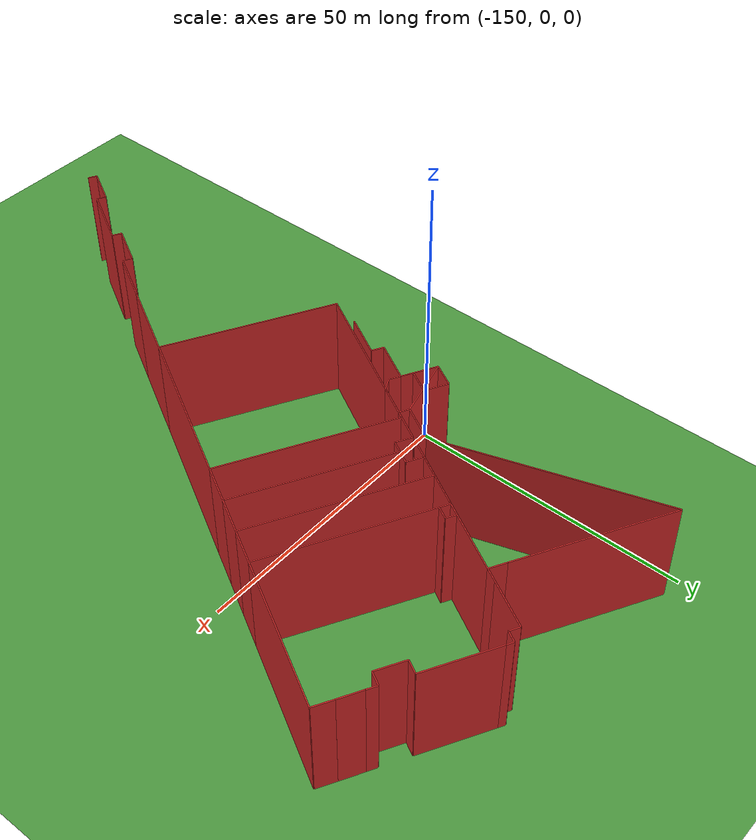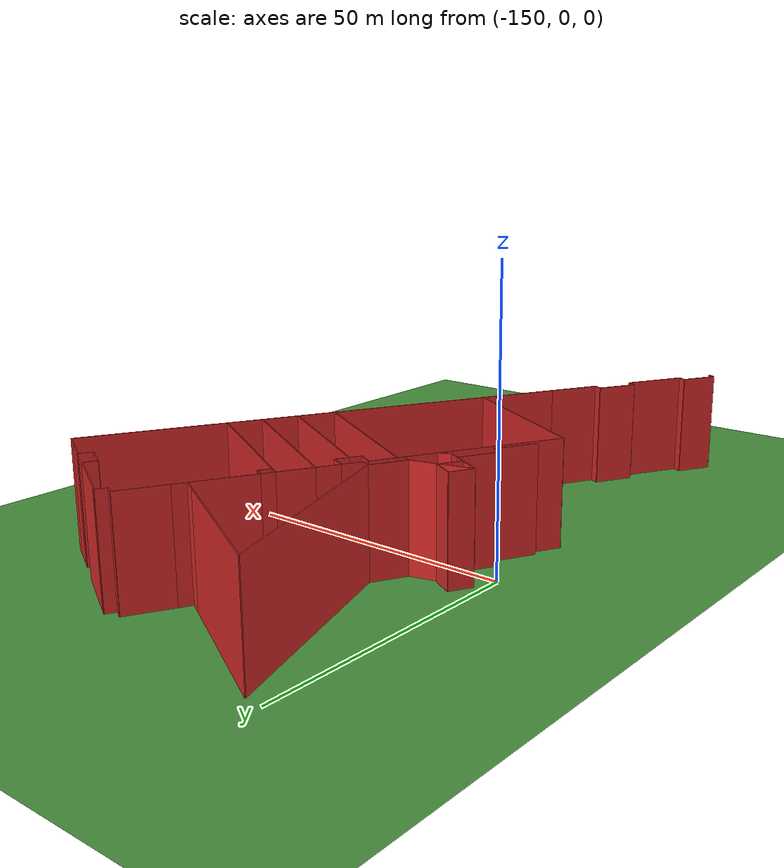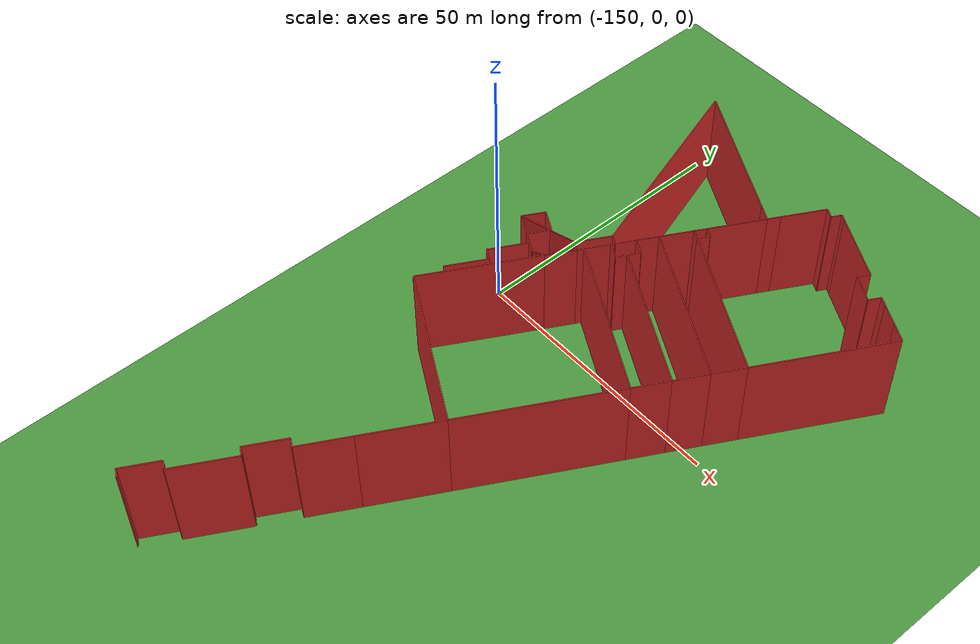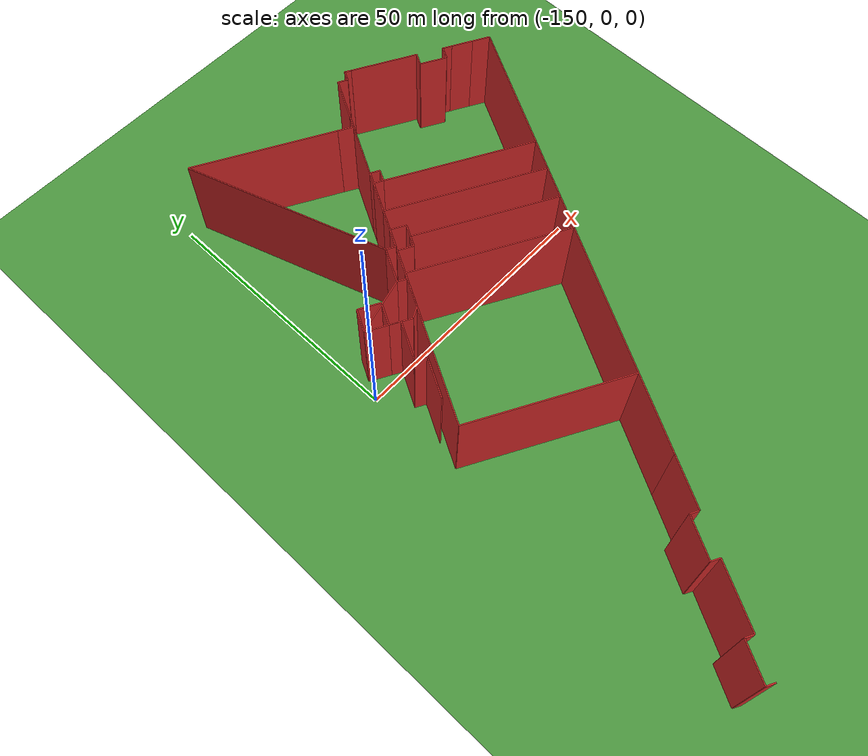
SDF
<sdf version="1.4">
 <world name="default">
  <model name="ground">
   <static>true</static>
   <link name="link">
    <collision name="collision">
     <geometry><plane><size>10000 10000</size><normal>0 0 1</normal></plane></geometry>
     <surface><friction><ode><mu>100</mu><mu2>50</mu2></ode></friction></surface>
    </collision>
    <visual name="visual">
     <pose>0 0 -1 0 0 0</pose>
     <geometry><plane><normal>0 0 1</normal><size>10000 10000</size></plane></geometry>
     <material>
      <script><uri>file://media/materials/scripts/gazebo.material</uri><name>Gazebo/Grass</name></script>
     </material>
    </visual>
   </link>
  </model>
  <include><uri>model://sun</uri></include>
  <model name="office_building_266170673">
   <static>true</static>
   <pose>-133.467087695 -51.8419113068 0.0 0 0 0</pose>
   <link name="office_building_266170673_0">
    <collision name="office_building_266170673_0">
     <geometry><box><size>9.57046490442 0.2 20.0</size></box></geometry>
    </collision>
    <visual name="office_building_266170673_0">
     <geometry><box><size>9.57046490442 0.2 20.0</size></box></geometry>
     <material>
      <script><uri>file://media/materials/scripts/gazebo.material</uri><name>Gazebo/Red</name></script>
     </material>
    </visual>
    <pose>1.27317436344 1.12023192378 9.0 0 0 1.06501905872</pose>
   </link>
   <link name="office_building_266170673_1">
    <collision name="office_building_266170673_1">
     <geometry><box><size>1.71310447526 0.2 20.0</size></box></geometry>
    </collision>
    <visual name="office_building_266170673_1">
     <geometry><box><size>1.71310447526 0.2 20.0</size></box></geometry>
     <material>
      <script><uri>file://media/materials/scripts/gazebo.material</uri><name>Gazebo/Red</name></script>
     </material>
    </visual>
    <pose>-1.79577992957 -2.65317223891 9.0 0 0 -0.502736365974</pose>
   </link>
  </model>
  <model name="office_building_266170671">
   <static>true</static>
   <pose>-147.989314854 -13.872265409 0.0 0 0 0</pose>
  </model>
  <model name="office_building_266170678">
   <static>true</static>
   <pose>-146.095301388 -8.93091840844 0.0 0 0 0</pose>
   <link name="office_building_266170678_0">
    <collision name="office_building_266170678_0">
     <geometry><box><size>2.19699793983 0.2 20.0</size></box></geometry>
    </collision>
    <visual name="office_building_266170678_0">
     <geometry><box><size>2.19699793983 0.2 20.0</size></box></geometry>
     <material>
      <script><uri>file://media/materials/scripts/gazebo.material</uri><name>Gazebo/Red</name></script>
     </material>
    </visual>
    <pose>0.947006733361 2.47067350026 9.0 0 0 2.63745570477</pose>
   </link>
   <link name="office_building_266170678_1">
    <collision name="office_building_266170678_1">
     <geometry><box><size>7.8622659953 0.2 20.0</size></box></geometry>
    </collision>
    <visual name="office_building_266170678_1">
     <geometry><box><size>7.8622659953 0.2 20.0</size></box></geometry>
     <material>
      <script><uri>file://media/materials/scripts/gazebo.material</uri><name>Gazebo/Red</name></script>
     </material>
    </visual>
    <pose>0.00741492303723 -1.50065277931 9.0 0 0 1.06593671188</pose>
   </link>
  </model>
  <model name="office_building_266170679">
   <static>true</static>
   <pose>-134.067640427 -33.0929005732 0.0 0 0 0</pose>
   <link name="office_building_266170679_0">
    <collision name="office_building_266170679_0">
     <geometry><box><size>30.5387298303 0.2 20.0</size></box></geometry>
    </collision>
    <visual name="office_building_266170679_0">
     <geometry><box><size>30.5387298303 0.2 20.0</size></box></geometry>
     <material>
      <script><uri>file://media/materials/scripts/gazebo.material</uri><name>Gazebo/Red</name></script>
     </material>
    </visual>
    <pose>-2.09605629576 6.72133312792 9.0 0 0 2.63916750768</pose>
   </link>
   <link name="office_building_266170679_1">
    <collision name="office_building_266170679_1">
     <geometry><box><size>14.644074832 0.2 20.0</size></box></geometry>
    </collision>
    <visual name="office_building_266170679_1">
     <geometry><box><size>14.644074832 0.2 20.0</size></box></geometry>
     <material>
      <script><uri>file://media/materials/scripts/gazebo.material</uri><name>Gazebo/Red</name></script>
     </material>
    </visual>
    <pose>7.73919597546 -7.03716616698 9.0 0 0 1.06507409138</pose>
   </link>
  </model>
  <model name="office_building_266170731">
   <static>true</static>
   <pose>-108.124013535 33.1073011275 0.0 0 0 0</pose>
   <link name="office_building_266170731_0">
    <collision name="office_building_266170731_0">
     <geometry><box><size>2.25210578197 0.2 20.0</size></box></geometry>
    </collision>
    <visual name="office_building_266170731_0">
     <geometry><box><size>2.25210578197 0.2 20.0</size></box></geometry>
     <material>
      <script><uri>file://media/materials/scripts/gazebo.material</uri><name>Gazebo/Red</name></script>
     </material>
    </visual>
    <pose>-15.7582168205 -9.60791184516 9.0 0 0 -2.07586279892</pose>
   </link>
   <link name="office_building_266170731_1">
    <collision name="office_building_266170731_1">
     <geometry><box><size>1.8527502463 0.2 20.0</size></box></geometry>
    </collision>
    <visual name="office_building_266170731_1">
     <geometry><box><size>1.8527502463 0.2 20.0</size></box></geometry>
     <material>
      <script><uri>file://media/materials/scripts/gazebo.material</uri><name>Gazebo/Red</name></script>
     </material>
    </visual>
    <pose>-16.0250800058 -8.17604838934 9.0 0 0 -0.502805492324</pose>
   </link>
   <link name="office_building_266170731_2">
    <collision name="office_building_266170731_2">
     <geometry><box><size>10.7568791496 0.2 20.0</size></box></geometry>
    </collision>
    <visual name="office_building_266170731_2">
     <geometry><box><size>10.7568791496 0.2 20.0</size></box></geometry>
     <material>
      <script><uri>file://media/materials/scripts/gazebo.material</uri><name>Gazebo/Red</name></script>
     </material>
    </visual>
    <pose>-14.2292612911 -3.0255638184 9.0 0 0 -2.07694625826</pose>
   </link>
   <link name="office_building_266170731_3">
    <collision name="office_building_266170731_3">
     <geometry><box><size>2.44257163504 0.2 20.0</size></box></geometry>
    </collision>
    <visual name="office_building_266170731_3">
     <geometry><box><size>2.44257163504 0.2 20.0</size></box></geometry>
     <material>
      <script><uri>file://media/materials/scripts/gazebo.material</uri><name>Gazebo/Red</name></script>
     </material>
    </visual>
    <pose>-11.0323828173 2.74819575073 9.0 0 0 -2.0743664926</pose>
   </link>
   <link name="office_building_266170731_4">
    <collision name="office_building_266170731_4">
     <geometry><box><size>8.40954100894 0.2 20.0</size></box></geometry>
    </collision>
    <visual name="office_building_266170731_4">
     <geometry><box><size>8.40954100894 0.2 20.0</size></box></geometry>
     <material>
      <script><uri>file://media/materials/scripts/gazebo.material</uri><name>Gazebo/Red</name></script>
     </material>
    </visual>
    <pose>-8.40259741833 7.49438017352 9.0 0 0 -2.07746775129</pose>
   </link>
   <link name="office_building_266170731_5">
    <collision name="office_building_266170731_5">
     <geometry><box><size>1.85274963665 0.2 20.0</size></box></geometry>
    </collision>
    <visual name="office_building_266170731_5">
     <geometry><box><size>1.85274963665 0.2 20.0</size></box></geometry>
     <material>
      <script><uri>file://media/materials/scripts/gazebo.material</uri><name>Gazebo/Red</name></script>
     </material>
    </visual>
    <pose>-5.55043000251 10.7244743061 9.0 0 0 2.63878520257</pose>
   </link>
   <link name="office_building_266170731_6">
    <collision name="office_building_266170731_6">
     <geometry><box><size>1.97377856665 0.2 20.0</size></box></geometry>
    </collision>
    <visual name="office_building_266170731_6">
     <geometry><box><size>1.97377856665 0.2 20.0</size></box></geometry>
     <material>
      <script><uri>file://media/materials/scripts/gazebo.material</uri><name>Gazebo/Red</name></script>
     </material>
    </visual>
    <pose>-4.26056633254 11.1413905541 9.0 0 0 -2.07658262075</pose>
   </link>
   <link name="office_building_266170731_7">
    <collision name="office_building_266170731_7">
     <geometry><box><size>1.22356588199 0.2 20.0</size></box></geometry>
    </collision>
    <visual name="office_building_266170731_7">
     <geometry><box><size>1.22356588199 0.2 20.0</size></box></geometry>
     <material>
      <script><uri>file://media/materials/scripts/gazebo.material</uri><name>Gazebo/Red</name></script>
     </material>
    </visual>
    <pose>-3.2486891445 11.7057058723 9.0 0 0 2.63093554512</pose>
   </link>
   <link name="office_building_266170731_8">
    <collision name="office_building_266170731_8">
     <geometry><box><size>12.8961868752 0.2 20.0</size></box></geometry>
    </collision>
    <visual name="office_building_266170731_8">
     <geometry><box><size>12.8961868752 0.2 20.0</size></box></geometry>
     <material>
      <script><uri>file://media/materials/scripts/gazebo.material</uri><name>Gazebo/Red</name></script>
     </material>
    </visual>
    <pose>2.93928934416 8.3071117027 9.0 0 0 2.64014224844</pose>
   </link>
   <link name="office_building_266170731_9">
    <collision name="office_building_266170731_9">
     <geometry><box><size>2.38021212093 0.2 20.0</size></box></geometry>
    </collision>
    <visual name="office_building_266170731_9">
     <geometry><box><size>2.38021212093 0.2 20.0</size></box></geometry>
     <material>
      <script><uri>file://media/materials/scripts/gazebo.material</uri><name>Gazebo/Red</name></script>
     </material>
    </visual>
    <pose>8.01531513341 4.16732714754 9.0 0 0 1.06345531949</pose>
   </link>
   <link name="office_building_266170731_10">
    <collision name="office_building_266170731_10">
     <geometry><box><size>5.16285410381 0.2 20.0</size></box></geometry>
    </collision>
    <visual name="office_building_266170731_10">
     <geometry><box><size>5.16285410381 0.2 20.0</size></box></geometry>
     <material>
      <script><uri>file://media/materials/scripts/gazebo.material</uri><name>Gazebo/Red</name></script>
     </material>
    </visual>
    <pose>9.69990714547 1.88476980147 9.0 0 0 2.63949222556</pose>
   </link>
   <link name="office_building_266170731_11">
    <collision name="office_building_266170731_11">
     <geometry><box><size>2.37285275512 0.2 20.0</size></box></geometry>
    </collision>
    <visual name="office_building_266170731_11">
     <geometry><box><size>2.37285275512 0.2 20.0</size></box></geometry>
     <material>
      <script><uri>file://media/materials/scripts/gazebo.material</uri><name>Gazebo/Red</name></script>
     </material>
    </visual>
    <pose>12.5409365152 1.67840003551 9.0 0 0 -2.07986183549</pose>
   </link>
   <link name="office_building_266170731_12">
    <collision name="office_building_266170731_12">
     <geometry><box><size>1.78214057233 0.2 20.0</size></box></geometry>
    </collision>
    <visual name="office_building_266170731_12">
     <geometry><box><size>1.78214057233 0.2 20.0</size></box></geometry>
     <material>
      <script><uri>file://media/materials/scripts/gazebo.material</uri><name>Gazebo/Red</name></script>
     </material>
    </visual>
    <pose>13.8975174185 2.2806158566 9.0 0 0 2.63317122928</pose>
   </link>
   <link name="office_building_266170731_13">
    <collision name="office_building_266170731_13">
     <geometry><box><size>4.15944759532 0.2 20.0</size></box></geometry>
    </collision>
    <visual name="office_building_266170731_13">
     <geometry><box><size>4.15944759532 0.2 20.0</size></box></geometry>
     <material>
      <script><uri>file://media/materials/scripts/gazebo.material</uri><name>Gazebo/Red</name></script>
     </material>
    </visual>
    <pose>16.5050318243 0.857170071825 9.0 0 0 2.64564214094</pose>
   </link>
   <link name="office_building_266170731_14">
    <collision name="office_building_266170731_14">
     <geometry><box><size>3.45788490094 0.2 20.0</size></box></geometry>
    </collision>
    <visual name="office_building_266170731_14">
     <geometry><box><size>3.45788490094 0.2 20.0</size></box></geometry>
     <material>
      <script><uri>file://media/materials/scripts/gazebo.material</uri><name>Gazebo/Red</name></script>
     </material>
    </visual>
    <pose>19.8464311792 -0.970566834367 9.0 0 0 2.63554288183</pose>
   </link>
   <link name="office_building_266170731_15">
    <collision name="office_building_266170731_15">
     <geometry><box><size>25.8421628172 0.2 20.0</size></box></geometry>
    </collision>
    <visual name="office_building_266170731_15">
     <geometry><box><size>25.8421628172 0.2 20.0</size></box></geometry>
     <material>
      <script><uri>file://media/materials/scripts/gazebo.material</uri><name>Gazebo/Red</name></script>
     </material>
    </visual>
    <pose>15.0983735912 -13.1118564182 9.0 0 0 1.0650011869</pose>
   </link>
   <link name="office_building_266170731_16">
    <collision name="office_building_266170731_16">
     <geometry><box><size>28.6900139108 0.2 20.0</size></box></geometry>
    </collision>
    <visual name="office_building_266170731_16">
     <geometry><box><size>28.6900139108 0.2 20.0</size></box></geometry>
     <material>
      <script><uri>file://media/materials/scripts/gazebo.material</uri><name>Gazebo/Red</name></script>
     </material>
    </visual>
    <pose>-3.73250322478 -17.5042255905 9.0 0 0 -0.502662573468</pose>
   </link>
  </model>
  <model name="office_building_266170730">
   <static>true</static>
   <pose>-118.354006487 15.6578360338 0.0 0 0 0</pose>
   <link name="office_building_266170730_0">
    <collision name="office_building_266170730_0">
     <geometry><box><size>6.16481142378 0.2 20.0</size></box></geometry>
    </collision>
    <visual name="office_building_266170730_0">
     <geometry><box><size>6.16481142378 0.2 20.0</size></box></geometry>
     <material>
      <script><uri>file://media/materials/scripts/gazebo.material</uri><name>Gazebo/Red</name></script>
     </material>
    </visual>
    <pose>-9.19210461233 5.05364265609 9.0 0 0 -2.0773867471</pose>
   </link>
   <link name="office_building_266170730_1">
    <collision name="office_building_266170730_1">
     <geometry><box><size>1.85275030977 0.2 20.0</size></box></geometry>
    </collision>
    <visual name="office_building_266170730_1">
     <geometry><box><size>1.85275030977 0.2 20.0</size></box></geometry>
     <material>
      <script><uri>file://media/materials/scripts/gazebo.material</uri><name>Gazebo/Red</name></script>
     </material>
    </visual>
    <pose>-6.88480371905 7.30250349107 9.0 0 0 2.63878736558</pose>
   </link>
   <link name="office_building_266170730_2">
    <collision name="office_building_266170730_2">
     <geometry><box><size>28.6900139108 0.2 20.0</size></box></geometry>
    </collision>
    <visual name="office_building_266170730_2">
     <geometry><box><size>28.6900139108 0.2 20.0</size></box></geometry>
     <material>
      <script><uri>file://media/materials/scripts/gazebo.material</uri><name>Gazebo/Red</name></script>
     </material>
    </visual>
    <pose>6.49748972786 -0.054760496863 9.0 0 0 2.63893008012</pose>
   </link>
   <link name="office_building_266170730_3">
    <collision name="office_building_266170730_3">
     <geometry><box><size>6.16479435759 0.2 20.0</size></box></geometry>
    </collision>
    <visual name="office_building_266170730_3">
     <geometry><box><size>6.16479435759 0.2 20.0</size></box></geometry>
     <material>
      <script><uri>file://media/materials/scripts/gazebo.material</uri><name>Gazebo/Red</name></script>
     </material>
    </visual>
    <pose>17.5724876469 -9.66087853824 9.0 0 0 1.06420636105</pose>
   </link>
   <link name="office_building_266170730_4">
    <collision name="office_building_266170730_4">
     <geometry><box><size>30.542767072 0.2 20.0</size></box></geometry>
    </collision>
    <visual name="office_building_266170730_4">
     <geometry><box><size>30.542767072 0.2 20.0</size></box></geometry>
     <material>
      <script><uri>file://media/materials/scripts/gazebo.material</uri><name>Gazebo/Red</name></script>
     </material>
    </visual>
    <pose>2.69461488447 -4.99888215922 9.0 0 0 -0.502670672255</pose>
   </link>
  </model>
  <model name="office_building_266170659">
   <static>true</static>
   <pose>-147.099395309 -74.2086101107 0.0 0 0 0</pose>
   <link name="office_building_266170659_0">
    <collision name="office_building_266170659_0">
     <geometry><box><size>7.06016941451 0.2 20.0</size></box></geometry>
    </collision>
    <visual name="office_building_266170659_0">
     <geometry><box><size>7.06016941451 0.2 20.0</size></box></geometry>
     <material>
      <script><uri>file://media/materials/scripts/gazebo.material</uri><name>Gazebo/Red</name></script>
     </material>
    </visual>
    <pose>0.0 0.0 9.0 0 0 1.06434252299</pose>
   </link>
  </model>
  <model name="office_building_266170654">
   <static>true</static>
   <pose>-148.083435214 -77.6956368148 0.0 0 0 0</pose>
   <link name="office_building_266170654_0">
    <collision name="office_building_266170654_0">
     <geometry><box><size>1.66195584272 0.2 20.0</size></box></geometry>
    </collision>
    <visual name="office_building_266170654_0">
     <geometry><box><size>1.66195584272 0.2 20.0</size></box></geometry>
     <material>
      <script><uri>file://media/materials/scripts/gazebo.material</uri><name>Gazebo/Red</name></script>
     </material>
    </visual>
    <pose>0.0 0.0 9.0 0 0 2.63928633415</pose>
   </link>
  </model>
  <model name="office_building_266170726">
   <static>true</static>
   <pose>-122.153971602 9.80405306425 0.0 0 0 0</pose>
   <link name="office_building_266170726_0">
    <collision name="office_building_266170726_0">
     <geometry><box><size>2.35273274342 0.2 20.0</size></box></geometry>
    </collision>
    <visual name="office_building_266170726_0">
     <geometry><box><size>2.35273274342 0.2 20.0</size></box></geometry>
     <material>
      <script><uri>file://media/materials/scripts/gazebo.material</uri><name>Gazebo/Red</name></script>
     </material>
    </visual>
    <pose>-6.79321521111 2.23202226742 9.0 0 0 -2.07921934293</pose>
   </link>
   <link name="office_building_266170726_1">
    <collision name="office_building_266170726_1">
     <geometry><box><size>2.97966850301 0.2 20.0</size></box></geometry>
    </collision>
    <visual name="office_building_266170726_1">
     <geometry><box><size>2.97966850301 0.2 20.0</size></box></geometry>
     <material>
      <script><uri>file://media/materials/scripts/gazebo.material</uri><name>Gazebo/Red</name></script>
     </material>
    </visual>
    <pose>-7.5270987189 3.97552811747 9.0 0 0 -0.501277452899</pose>
   </link>
   <link name="office_building_266170726_2">
    <collision name="office_building_266170726_2">
     <geometry><box><size>4.0226730791 0.2 20.0</size></box></geometry>
    </collision>
    <visual name="office_building_266170726_2">
     <geometry><box><size>4.0226730791 0.2 20.0</size></box></geometry>
     <material>
      <script><uri>file://media/materials/scripts/gazebo.material</uri><name>Gazebo/Red</name></script>
     </material>
    </visual>
    <pose>-7.86067829273 6.45181017426 9.0 0 0 -2.07571673659</pose>
   </link>
   <link name="office_building_266170726_3">
    <collision name="office_building_266170726_3">
     <geometry><box><size>30.542767072 0.2 20.0</size></box></geometry>
    </collision>
    <visual name="office_building_266170726_3">
     <geometry><box><size>30.542767072 0.2 20.0</size></box></geometry>
     <material>
      <script><uri>file://media/materials/scripts/gazebo.material</uri><name>Gazebo/Red</name></script>
     </material>
    </visual>
    <pose>6.49457999907 0.85490081037 9.0 0 0 2.63892198134</pose>
   </link>
   <link name="office_building_266170726_4">
    <collision name="office_building_266170726_4">
     <geometry><box><size>6.36262431843 0.2 20.0</size></box></geometry>
    </collision>
    <visual name="office_building_266170726_4">
     <geometry><box><size>6.36262431843 0.2 20.0</size></box></geometry>
     <material>
      <script><uri>file://media/materials/scripts/gazebo.material</uri><name>Gazebo/Red</name></script>
     </material>
    </visual>
    <pose>18.3368288821 -9.28605775748 9.0 0 0 1.06547037414</pose>
   </link>
   <link name="office_building_266170726_5">
    <collision name="office_building_266170726_5">
     <geometry><box><size>27.5687918757 0.2 20.0</size></box></geometry>
    </collision>
    <visual name="office_building_266170726_5">
     <geometry><box><size>27.5687918757 0.2 20.0</size></box></geometry>
     <material>
      <script><uri>file://media/materials/scripts/gazebo.material</uri><name>Gazebo/Red</name></script>
     </material>
    </visual>
    <pose>4.71545409814 -5.43265424366 9.0 0 0 -0.502358598428</pose>
   </link>
  </model>
  <model name="office_building_266170776">
   <static>true</static>
   <pose>-141.826049297 -66.369092537 0.0 0 0 0</pose>
   <link name="office_building_266170776_0">
    <collision name="office_building_266170776_0">
     <geometry><box><size>1.71310467713 0.2 20.0</size></box></geometry>
    </collision>
    <visual name="office_building_266170776_0">
     <geometry><box><size>1.71310467713 0.2 20.0</size></box></geometry>
     <material>
      <script><uri>file://media/materials/scripts/gazebo.material</uri><name>Gazebo/Red</name></script>
     </material>
    </visual>
    <pose>2.83820423848 5.1526370751 9.0 0 0 2.63885698366</pose>
   </link>
   <link name="office_building_266170776_1">
    <collision name="office_building_266170776_1">
     <geometry><box><size>11.7675997603 0.2 20.0</size></box></geometry>
    </collision>
    <visual name="office_building_266170776_1">
     <geometry><box><size>11.7675997603 0.2 20.0</size></box></geometry>
     <material>
      <script><uri>file://media/materials/scripts/gazebo.material</uri><name>Gazebo/Red</name></script>
     </material>
    </visual>
    <pose>0.736670033529 -0.40639062952 9.0 0 0 1.06473234215</pose>
   </link>
   <link name="office_building_266170776_2">
    <collision name="office_building_266170776_2">
     <geometry><box><size>1.65221844056 0.2 20.0</size></box></geometry>
    </collision>
    <visual name="office_building_266170776_2">
     <geometry><box><size>1.65221844056 0.2 20.0</size></box></geometry>
     <material>
      <script><uri>file://media/materials/scripts/gazebo.material</uri><name>Gazebo/Red</name></script>
     </material>
    </visual>
    <pose>-2.83820423848 -5.1526370751 9.0 0 0 -0.505547191826</pose>
   </link>
  </model>
  <model name="office_building_266170689">
   <static>true</static>
   <pose>-134.367930023 -9.62477553021 0.0 0 0 0</pose>
   <link name="office_building_266170689_0">
    <collision name="office_building_266170689_0">
     <geometry><box><size>22.3963955537 0.2 20.0</size></box></geometry>
    </collision>
    <visual name="office_building_266170689_0">
     <geometry><box><size>22.3963955537 0.2 20.0</size></box></geometry>
     <material>
      <script><uri>file://media/materials/scripts/gazebo.material</uri><name>Gazebo/Red</name></script>
     </material>
    </visual>
    <pose>-9.75180215735 0.40186447198 9.0 0 0 -2.07666678815</pose>
   </link>
   <link name="office_building_266170689_1">
    <collision name="office_building_266170689_1">
     <geometry><box><size>5.62290266719 0.2 20.0</size></box></geometry>
    </collision>
    <visual name="office_building_266170689_1">
     <geometry><box><size>5.62290266719 0.2 20.0</size></box></geometry>
     <material>
      <script><uri>file://media/materials/scripts/gazebo.material</uri><name>Gazebo/Red</name></script>
     </material>
    </visual>
    <pose>-2.96336309899 12.6569598667 9.0 0 0 -2.07658405315</pose>
   </link>
   <link name="office_building_266170689_2">
    <collision name="office_building_266170689_2">
     <geometry><box><size>1.17367076162 0.2 20.0</size></box></geometry>
    </collision>
    <visual name="office_building_266170689_2">
     <geometry><box><size>1.17367076162 0.2 20.0</size></box></geometry>
     <material>
      <script><uri>file://media/materials/scripts/gazebo.material</uri><name>Gazebo/Red</name></script>
     </material>
    </visual>
    <pose>-1.31767675868 15.6301846028 9.0 0 0 -2.07508023965</pose>
   </link>
   <link name="office_building_266170689_3">
    <collision name="office_building_266170689_3">
     <geometry><box><size>30.5427731719 0.2 20.0</size></box></geometry>
    </collision>
    <visual name="office_building_266170689_3">
     <geometry><box><size>30.5427731719 0.2 20.0</size></box></geometry>
     <material>
      <script><uri>file://media/materials/scripts/gazebo.material</uri><name>Gazebo/Red</name></script>
     </material>
    </visual>
    <pose>12.3481809774 8.78672840284 9.0 0 0 2.63892317346</pose>
   </link>
   <link name="office_building_266170689_4">
    <collision name="office_building_266170689_4">
     <geometry><box><size>29.1855188652 0.2 20.0</size></box></geometry>
    </collision>
    <visual name="office_building_266170689_4">
     <geometry><box><size>29.1855188652 0.2 20.0</size></box></geometry>
     <material>
      <script><uri>file://media/materials/scripts/gazebo.material</uri><name>Gazebo/Red</name></script>
     </material>
    </visual>
    <pose>18.6585300939 -11.3351527203 9.0 0 0 1.06486621869</pose>
   </link>
   <link name="office_building_266170689_5">
    <collision name="office_building_266170689_5">
     <geometry><box><size>30.5387298303 0.2 20.0</size></box></geometry>
    </collision>
    <visual name="office_building_266170689_5">
     <geometry><box><size>30.5387298303 0.2 20.0</size></box></geometry>
     <material>
      <script><uri>file://media/materials/scripts/gazebo.material</uri><name>Gazebo/Red</name></script>
     </material>
    </visual>
    <pose>-1.79576670053 -16.746791915 9.0 0 0 -0.502425145909</pose>
   </link>
  </model>
  <model name="office_building_266170681">
   <static>true</static>
   <pose>-145.295629915 -0.0631704955224 0.0 0 0 0</pose>
   <link name="office_building_266170681_0">
    <collision name="office_building_266170681_0">
     <geometry><box><size>4.27383510485 0.2 20.0</size></box></geometry>
    </collision>
    <visual name="office_building_266170681_0">
     <geometry><box><size>4.27383510485 0.2 20.0</size></box></geometry>
     <material>
      <script><uri>file://media/materials/scripts/gazebo.material</uri><name>Gazebo/Red</name></script>
     </material>
    </visual>
    <pose>-0.975735820021 2.64053094425 9.0 0 0 2.63994804594</pose>
   </link>
   <link name="office_building_266170681_1">
    <collision name="office_building_266170681_1">
     <geometry><box><size>2.13204429289 0.2 20.0</size></box></geometry>
    </collision>
    <visual name="office_building_266170681_1">
     <geometry><box><size>2.13204429289 0.2 20.0</size></box></geometry>
     <material>
      <script><uri>file://media/materials/scripts/gazebo.material</uri><name>Gazebo/Red</name></script>
     </material>
    </visual>
    <pose>1.83193564759 1.09916789009 9.0 0 0 2.63869445184</pose>
   </link>
   <link name="office_building_266170681_2">
    <collision name="office_building_266170681_2">
     <geometry><box><size>7.37874066211 0.2 20.0</size></box></geometry>
    </collision>
    <visual name="office_building_266170681_2">
     <geometry><box><size>7.37874066211 0.2 20.0</size></box></geometry>
     <material>
      <script><uri>file://media/materials/scripts/gazebo.material</uri><name>Gazebo/Red</name></script>
     </material>
    </visual>
    <pose>0.975735820021 -2.64053094425 9.0 0 0 1.0641565055</pose>
   </link>
  </model>
  <model name="office_building_266170687">
   <static>true</static>
   <pose>-135.952470685 9.2650067172 0.0 0 0 0</pose>
   <link name="office_building_266170687_0">
    <collision name="office_building_266170687_0">
     <geometry><box><size>6.64097100595 0.2 20.0</size></box></geometry>
    </collision>
    <visual name="office_building_266170687_0">
     <geometry><box><size>6.64097100595 0.2 20.0</size></box></geometry>
     <material>
      <script><uri>file://media/materials/scripts/gazebo.material</uri><name>Gazebo/Red</name></script>
     </material>
    </visual>
    <pose>0.0 0.0 9.0 0 0 1.06569489938</pose>
   </link>
  </model>
  <model name="office_building_266170685">
   <static>true</static>
   <pose>-141.702365565 2.99091521434 0.0 0 0 0</pose>
   <link name="office_building_266170685_0">
    <collision name="office_building_266170685_0">
     <geometry><box><size>2.08089471437 0.2 20.0</size></box></geometry>
    </collision>
    <visual name="office_building_266170685_0">
     <geometry><box><size>2.08089471437 0.2 20.0</size></box></geometry>
     <material>
      <script><uri>file://media/materials/scripts/gazebo.material</uri><name>Gazebo/Red</name></script>
     </material>
    </visual>
    <pose>0.0845070064775 -2.96985830035 9.0 0 0 -0.502560195102</pose>
   </link>
   <link name="office_building_266170685_1">
    <collision name="office_building_266170685_1">
     <geometry><box><size>2.13204429289 0.2 20.0</size></box></geometry>
    </collision>
    <visual name="office_building_266170685_1">
     <geometry><box><size>2.13204429289 0.2 20.0</size></box></geometry>
     <material>
      <script><uri>file://media/materials/scripts/gazebo.material</uri><name>Gazebo/Red</name></script>
     </material>
    </visual>
    <pose>-1.76132870233 -1.95491781977 9.0 0 0 -0.502898201752</pose>
   </link>
   <link name="office_building_266170685_2">
    <collision name="office_building_266170685_2">
     <geometry><box><size>4.35400634359 0.2 20.0</size></box></geometry>
    </collision>
    <visual name="office_building_266170685_2">
     <geometry><box><size>4.35400634359 0.2 20.0</size></box></geometry>
     <material>
      <script><uri>file://media/materials/scripts/gazebo.material</uri><name>Gazebo/Red</name></script>
     </material>
    </visual>
    <pose>-1.6390133215 0.46240888685 9.0 0 0 -2.07742537641</pose>
   </link>
   <link name="office_building_266170685_3">
    <collision name="office_building_266170685_3">
     <geometry><box><size>4.27383482177 0.2 20.0</size></box></geometry>
    </collision>
    <visual name="office_building_266170685_3">
     <geometry><box><size>4.27383482177 0.2 20.0</size></box></geometry>
     <material>
      <script><uri>file://media/materials/scripts/gazebo.material</uri><name>Gazebo/Red</name></script>
     </material>
    </visual>
    <pose>-2.4562942556 3.39352447034 9.0 0 0 -0.501645002268</pose>
   </link>
   <link name="office_building_266170685_4">
    <collision name="office_building_266170685_4">
     <geometry><box><size>4.35400803152 0.2 20.0</size></box></geometry>
    </collision>
    <visual name="office_building_266170685_4">
     <geometry><box><size>4.35400803152 0.2 20.0</size></box></geometry>
     <material>
      <script><uri>file://media/materials/scripts/gazebo.material</uri><name>Gazebo/Red</name></script>
     </material>
    </visual>
    <pose>-5.38628110403 2.51756081787 9.0 0 0 1.06416721409</pose>
   </link>
   <link name="office_building_266170685_5">
    <collision name="office_building_266170685_5">
     <geometry><box><size>10.9381932119 0.2 20.0</size></box></geometry>
    </collision>
    <visual name="office_building_266170685_5">
     <geometry><box><size>10.9381932119 0.2 20.0</size></box></geometry>
     <material>
      <script><uri>file://media/materials/scripts/gazebo.material</uri><name>Gazebo/Red</name></script>
     </material>
    </visual>
    <pose>-1.14975488905 1.9911355839 9.0 0 0 -2.88705363801</pose>
   </link>
   <link name="office_building_266170685_6">
    <collision name="office_building_266170685_6">
     <geometry><box><size>1.81135493217 0.2 20.0</size></box></geometry>
    </collision>
    <visual name="office_building_266170685_6">
     <geometry><box><size>1.81135493217 0.2 20.0</size></box></geometry>
     <material>
      <script><uri>file://media/materials/scripts/gazebo.material</uri><name>Gazebo/Red</name></script>
     </material>
    </visual>
    <pose>4.93816792557 2.93447881973 9.0 0 0 2.64213789131</pose>
   </link>
   <link name="office_building_266170685_7">
    <collision name="office_building_266170685_7">
     <geometry><box><size>5.62290266719 0.2 20.0</size></box></geometry>
    </collision>
    <visual name="office_building_266170685_7">
     <geometry><box><size>5.62290266719 0.2 20.0</size></box></geometry>
     <material>
      <script><uri>file://media/materials/scripts/gazebo.material</uri><name>Gazebo/Red</name></script>
     </material>
    </visual>
    <pose>4.37107244323 0.0412691221571 9.0 0 0 1.06500860044</pose>
   </link>
   <link name="office_building_266170685_8">
    <collision name="office_building_266170685_8">
     <geometry><box><size>2.27137601992 0.2 20.0</size></box></geometry>
    </collision>
    <visual name="office_building_266170685_8">
     <geometry><box><size>2.27137601992 0.2 20.0</size></box></geometry>
     <material>
      <script><uri>file://media/materials/scripts/gazebo.material</uri><name>Gazebo/Red</name></script>
     </material>
    </visual>
    <pose>2.00261949348 -2.94459022411 9.0 0 0 0.481970596262</pose>
   </link>
  </model>
  <model name="office_building_266170699">
   <static>true</static>
   <pose>-129.965694123 23.6644953708 0.0 0 0 0</pose>
   <link name="office_building_266170699_0">
    <collision name="office_building_266170699_0">
     <geometry><box><size>1.81540384292 0.2 20.0</size></box></geometry>
    </collision>
    <visual name="office_building_266170699_0">
     <geometry><box><size>1.81540384292 0.2 20.0</size></box></geometry>
     <material>
      <script><uri>file://media/materials/scripts/gazebo.material</uri><name>Gazebo/Red</name></script>
     </material>
    </visual>
    <pose>-3.58496319917 -11.9316307392 9.0 0 0 -0.503528214068</pose>
   </link>
   <link name="office_building_266170699_1">
    <collision name="office_building_266170699_1">
     <geometry><box><size>39.3258664957 0.2 20.0</size></box></geometry>
    </collision>
    <visual name="office_building_266170699_1">
     <geometry><box><size>39.3258664957 0.2 20.0</size></box></geometry>
     <material>
      <script><uri>file://media/materials/scripts/gazebo.material</uri><name>Gazebo/Red</name></script>
     </material>
    </visual>
    <pose>-10.5012089375 7.19222478431 9.0 0 0 -1.25422858598</pose>
   </link>
   <link name="office_building_266170699_2">
    <collision name="office_building_266170699_2">
     <geometry><box><size>27.572863121 0.2 20.0</size></box></geometry>
    </collision>
    <visual name="office_building_266170699_2">
     <geometry><box><size>27.572863121 0.2 20.0</size></box></geometry>
     <material>
      <script><uri>file://media/materials/scripts/gazebo.material</uri><name>Gazebo/Red</name></script>
     </material>
    </visual>
    <pose>-4.54112141151 19.2367024813 9.0 0 0 2.63896013764</pose>
   </link>
   <link name="office_building_266170699_3">
    <collision name="office_building_266170699_3">
     <geometry><box><size>3.05841782442 0.2 20.0</size></box></geometry>
    </collision>
    <visual name="office_building_266170699_3">
     <geometry><box><size>3.05841782442 0.2 20.0</size></box></geometry>
     <material>
      <script><uri>file://media/materials/scripts/gazebo.material</uri><name>Gazebo/Red</name></script>
     </material>
    </visual>
    <pose>8.88006414645 11.8583137622 9.0 0 0 2.63871979108</pose>
   </link>
   <link name="office_building_266170699_4">
    <collision name="office_building_266170699_4">
     <geometry><box><size>10.7568791496 0.2 20.0</size></box></geometry>
    </collision>
    <visual name="office_building_266170699_4">
     <geometry><box><size>10.7568791496 0.2 20.0</size></box></geometry>
     <material>
      <script><uri>file://media/materials/scripts/gazebo.material</uri><name>Gazebo/Red</name></script>
     </material>
    </visual>
    <pose>7.61241929719 6.41724193825 9.0 0 0 1.06464639533</pose>
   </link>
   <link name="office_building_266170699_5">
    <collision name="office_building_266170699_5">
     <geometry><box><size>2.25210616066 0.2 20.0</size></box></geometry>
    </collision>
    <visual name="office_building_266170699_5">
     <geometry><box><size>2.25210616066 0.2 20.0</size></box></geometry>
     <material>
      <script><uri>file://media/materials/scripts/gazebo.material</uri><name>Gazebo/Red</name></script>
     </material>
    </visual>
    <pose>4.46002073136 0.727707609901 9.0 0 0 1.06572982687</pose>
   </link>
   <link name="office_building_266170699_6">
    <collision name="office_building_266170699_6">
     <geometry><box><size>6.16481142378 0.2 20.0</size></box></geometry>
    </collision>
    <visual name="office_building_266170699_6">
     <geometry><box><size>6.16481142378 0.2 20.0</size></box></geometry>
     <material>
      <script><uri>file://media/materials/scripts/gazebo.material</uri><name>Gazebo/Red</name></script>
     </material>
    </visual>
    <pose>2.41958302336 -2.9530166809 9.0 0 0 1.06420590649</pose>
   </link>
   <link name="office_building_266170699_7">
    <collision name="office_building_266170699_7">
     <geometry><box><size>4.0226730791 0.2 20.0</size></box></geometry>
    </collision>
    <visual name="office_building_266170699_7">
     <geometry><box><size>4.0226730791 0.2 20.0</size></box></geometry>
     <material>
      <script><uri>file://media/materials/scripts/gazebo.material</uri><name>Gazebo/Red</name></script>
     </material>
    </visual>
    <pose>-0.048955771644 -7.40863213233 9.0 0 0 1.065875917</pose>
   </link>
   <link name="office_building_266170699_8">
    <collision name="office_building_266170699_8">
     <geometry><box><size>3.65648734514 0.2 20.0</size></box></geometry>
    </collision>
    <visual name="office_building_266170699_8">
     <geometry><box><size>3.65648734514 0.2 20.0</size></box></geometry>
     <material>
      <script><uri>file://media/materials/scripts/gazebo.material</uri><name>Gazebo/Red</name></script>
     </material>
    </visual>
    <pose>-1.90591770987 -10.7692969994 9.0 0 0 1.06611843712</pose>
   </link>
  </model>
  <model name="office_building_266170669">
   <static>true</static>
   <pose>-137.875925327 -57.4430613494 0.0 0 0 0</pose>
   <link name="office_building_266170669_0">
    <collision name="office_building_266170669_0">
     <geometry><box><size>7.68454985588 0.2 20.0</size></box></geometry>
    </collision>
    <visual name="office_building_266170669_0">
     <geometry><box><size>7.68454985588 0.2 20.0</size></box></geometry>
     <material>
      <script><uri>file://media/materials/scripts/gazebo.material</uri><name>Gazebo/Red</name></script>
     </material>
    </visual>
    <pose>0.0 0.0 9.0 0 0 1.06473503795</pose>
   </link>
  </model>
  <model name="office_building_266170712">
   <static>true</static>
   <pose>-125.424695661 4.7708797766 0.0 0 0 0</pose>
   <link name="office_building_266170712_0">
    <collision name="office_building_266170712_0">
     <geometry><box><size>4.68730984236 0.2 20.0</size></box></geometry>
    </collision>
    <visual name="office_building_266170712_0">
     <geometry><box><size>4.68730984236 0.2 20.0</size></box></geometry>
     <material>
      <script><uri>file://media/materials/scripts/gazebo.material</uri><name>Gazebo/Red</name></script>
     </material>
    </visual>
    <pose>-8.84317301064 3.79924975326 9.0 0 0 -2.07594890513</pose>
   </link>
   <link name="office_building_266170712_1">
    <collision name="office_building_266170712_1">
     <geometry><box><size>2.97966870344 0.2 20.0</size></box></geometry>
    </collision>
    <visual name="office_building_266170712_1">
     <geometry><box><size>2.97966870344 0.2 20.0</size></box></geometry>
     <material>
      <script><uri>file://media/materials/scripts/gazebo.material</uri><name>Gazebo/Red</name></script>
     </material>
    </visual>
    <pose>-6.40244295202 5.13424995076 9.0 0 0 2.64031560259</pose>
   </link>
   <link name="office_building_266170712_2">
    <collision name="office_building_266170712_2">
     <geometry><box><size>2.07638983613 0.2 20.0</size></box></geometry>
    </collision>
    <visual name="office_building_266170712_2">
     <geometry><box><size>2.07638983613 0.2 20.0</size></box></geometry>
     <material>
      <script><uri>file://media/materials/scripts/gazebo.material</uri><name>Gazebo/Red</name></script>
     </material>
    </visual>
    <pose>-4.59552511054 5.32797006635 9.0 0 0 -2.07369759803</pose>
   </link>
   <link name="office_building_266170712_3">
    <collision name="office_building_266170712_3">
     <geometry><box><size>27.5687918757 0.2 20.0</size></box></geometry>
    </collision>
    <visual name="office_building_266170712_3">
     <geometry><box><size>27.5687918757 0.2 20.0</size></box></geometry>
     <material>
      <script><uri>file://media/materials/scripts/gazebo.material</uri><name>Gazebo/Red</name></script>
     </material>
    </visual>
    <pose>7.98617815678 -0.399480956006 9.0 0 0 2.63923405516</pose>
   </link>
   <link name="office_building_266170712_4">
    <collision name="office_building_266170712_4">
     <geometry><box><size>6.77642816859 0.2 20.0</size></box></geometry>
    </collision>
    <visual name="office_building_266170712_4">
     <geometry><box><size>6.77642816859 0.2 20.0</size></box></geometry>
     <material>
      <script><uri>file://media/materials/scripts/gazebo.material</uri><name>Gazebo/Red</name></script>
     </material>
    </visual>
    <pose>18.4273799414 -10.0013777288 9.0 0 0 1.06549957255</pose>
   </link>
   <link name="office_building_266170712_5">
    <collision name="office_building_266170712_5">
     <geometry><box><size>30.5427731719 0.2 20.0</size></box></geometry>
    </collision>
    <visual name="office_building_266170712_5">
     <geometry><box><size>30.5427731719 0.2 20.0</size></box></geometry>
     <material>
      <script><uri>file://media/materials/scripts/gazebo.material</uri><name>Gazebo/Red</name></script>
     </material>
    </visual>
    <pose>3.40494661541 -5.60892690397 9.0 0 0 -0.50266948013</pose>
   </link>
  </model>
 </world>
</sdf>
